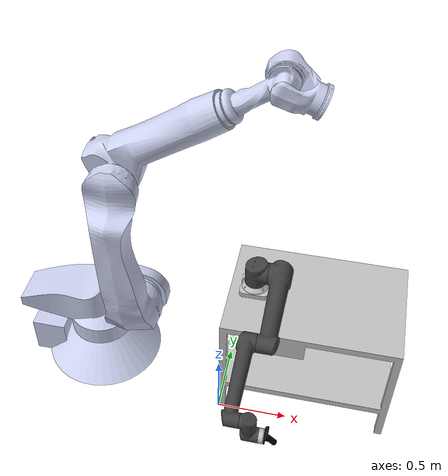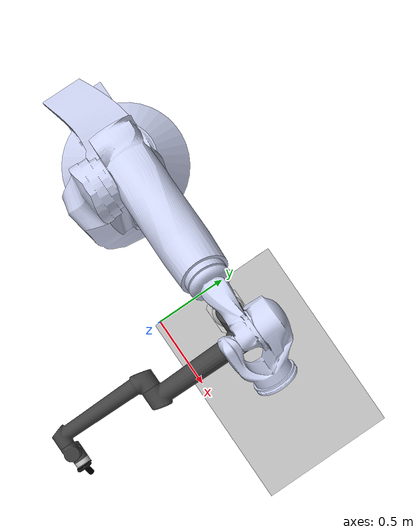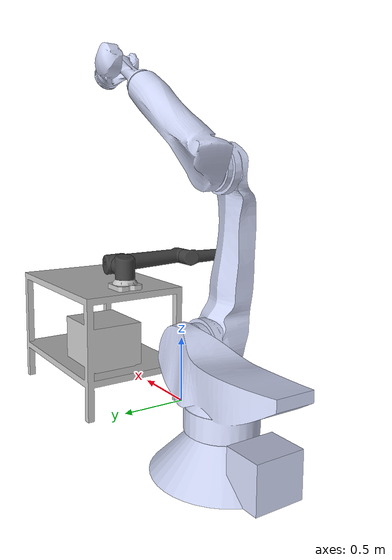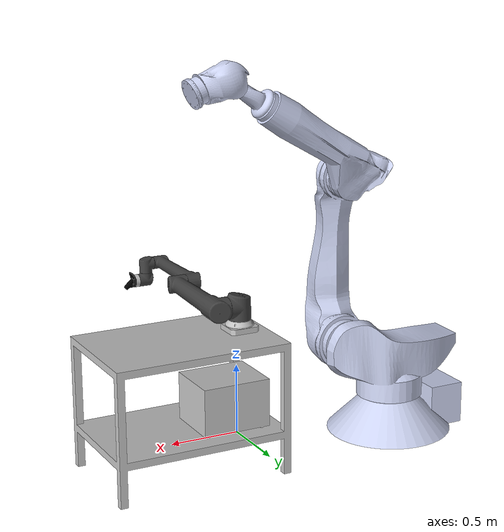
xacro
<?xml version="1.0"?>
<robot xmlns:xacro="http://ros.org/wiki/xacro" name="dual_robots">

  <!-- Define the world link -->
    <link name="world" />

  <!-- First robot -->
  <xacro:include filename="$(find bdr11_description)/urdf/ur10_robot.xacro" />
  <xacro:ur10_robot />

  <joint name="ur10_robot_joint" type="fixed">
    <parent link="world" />
    <child link="${ur10_ns}table_link" /> <!-- ${ur10_ns} -->
    <origin xyz="0 0 0" rpy="0 0 0" />
  </joint>

  <!-- Second robot -->
  <xacro:include filename="$(find bdr11_description)/urdf/quantec_eff.urdf.xacro" />
  <xacro:moveit_quantec />

  <joint name="quantec_robot_joint" type="fixed">
    <parent link="world" />
    <child link="${quantec_ns}base_link_quantec" />  <!-- ${quantec_ns} -->
    <origin xyz="-1 0.4 0" rpy="-1.57 0 0" /> <!-- Adjust xyz for the desired position -->
  </joint>

</robot>

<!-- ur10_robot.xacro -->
<!-- ur10_description_v3.urdf -->

<robot name="ur10_description_v3" xmlns:xacro="http://ros.org/wiki/xacro">

    <xacro:property name="deg_to_rad" value="0.017453292519943295" />
    <xacro:include filename="$(find ur10_description_v3)/urdf/ft_sensor.gazebo.xacro"/>
    <xacro:include filename="$(find ur10_description_v3)/urdf/kinetic_rgbd.urdf.xacro"/>
    <xacro:include filename="$(find ur10_description_v3)/urdf/kinetic_rgbd.gazebo.xacro"/>

    <xacro:property name="ur10_ns" value="" />

    <xacro:macro name="ur10_robot" params="">

        <link name="${ur10_ns}table_link">
            <inertial>
                <origin xyz="0.503679778923471 0.436750246454337 0.533162239913515" rpy="0 0 0" />
                <mass value="164.427518164029" />
                <inertia ixx="17.5438109681455" ixy="1.00173029919582" ixz="-0.84554880731535" iyy="27.9962527469498" iyz="0.32261270489944" izz="25.3196927520228" />
            </inertial>
            <visual>
                <origin xyz="0 0 0" rpy="0 0 0" />
                <geometry>
                    <mesh filename="package://ur10_description_v3/meshes/table_link.STL" />
                </geometry>
                <material name="">
                    <color rgba="0.752941176470588 0.752941176470588 0.752941176470588 1" />
                </material>
            </visual>
            <collision>
                <origin xyz="0 0 0" rpy="0 0 0" />
                <geometry>
                    <mesh filename="package://ur10_description_v3/meshes/table_link.STL" />
                </geometry>
            </collision>
        </link>
        <link name="${ur10_ns}adapter_link">
            <inertial>
                <origin xyz="0.00148762870939384 -5.55111512312578E-17 0.0184969952138566" rpy="0 0 0" />
                <mass value="1.3940393775037" />
                <inertia ixx="0.00480218257555222" ixy="-3.32761202584861E-19" ixz="-6.23136456619299E-09" iyy="0.00460995913579551" iyz="-9.9318015210222E-20" izz="0.00909416459764461" />
            </inertial>
            <visual>
                <origin xyz="0 0 0" rpy="0 0 0" />
                <geometry>
                    <mesh filename="package://ur10_description_v3/meshes/adapter_link.STL" />
                </geometry>
                <material name="">
                    <color rgba="0.752941176470588 0.752941176470588 0.752941176470588 1" />
                </material>
            </visual>
            <collision>
                <origin xyz="0 0 0" rpy="0 0 0" />
                <geometry>
                    <mesh filename="package://ur10_description_v3/meshes/adapter_link.STL" />
                </geometry>
            </collision>
        </link>
        <joint name="${ur10_ns}adapter_joint" type="fixed">
            <origin xyz="0.17 0.4 0.9" rpy="0 0 0" />
            <parent link="${ur10_ns}table_link" />
            <child link="${ur10_ns}adapter_link" />
            <axis xyz="0 0 0" />
        </joint>
        <link name="${ur10_ns}base_link">
            <inertial>
                <origin xyz="0.0011845 -2.7253E-08 0.017325" rpy="0 0 0" />
                <mass value="0.86268" />
                <inertia ixx="0.0017501" ixy="8.3495E-09" ixz="9.0593E-06" iyy="0.0016637" iyz="-4.5806E-10" izz="0.0032119" />
            </inertial>
            <visual>
                <origin xyz="0 0 0" rpy="0 0 0" />
                <geometry>
                    <mesh filename="package://ur10_description_v3/meshes/base_link.STL" />
                </geometry>
                <material name="">
                    <color rgba="0.75294 0.75294 0.75294 1" />
                </material>
            </visual>
            <collision>
                <origin xyz="0 0 0" rpy="0 0 0" />
                <geometry>
                    <mesh filename="package://ur10_description_v3/meshes/base_link.STL" />
                </geometry>
            </collision>
        </link>
        <joint name="${ur10_ns}base_joint" type="fixed">
            <origin xyz="0 0 0.037" rpy="0 0 0" />
            <parent link="${ur10_ns}adapter_link" />
            <child link="${ur10_ns}base_link" />
            <axis xyz="0 0 0" />
        </joint>
        <link name="${ur10_ns}shoulder_link">
            <inertial>
                <origin xyz="2.679E-07 0.010024 0.0831" rpy="0 0 0" />
                <mass value="7.778" />
                <inertia ixx="0.012906" ixy="1.6076E-08" ixz="-3.7079E-08" iyy="0.012039" iyz="-0.00053627" izz="0.010755" />
            </inertial>
            <visual>
                <origin xyz="0 0 0" rpy="0 0 0" />
                <geometry>
                    <mesh filename="package://ur10_description_v3/meshes/shoulder_link.STL" />
                </geometry>
                <material name="">
                    <color rgba="0.25098 0.25098 0.25098 1" />
                </material>
            </visual>
            <collision>
                <origin xyz="0 0 0" rpy="0 0 0" />
                <geometry>
                    <mesh filename="package://ur10_description_v3/meshes/shoulder_link.STL" />
                </geometry>
            </collision>
        </link>
        <joint name="${ur10_ns}shoulder_pan_joint" type="revolute">
            <origin xyz="0 0 0.038" rpy="0 0 -1.57" />
            <parent link="${ur10_ns}base_link" />
            <child link="${ur10_ns}shoulder_link" />
            <axis xyz="0 0 1" />
            <limit lower="-6.28" upper="6.28" effort="330" velocity="120" />
        </joint>
        <link name="${ur10_ns}upper_arm_link">
            <inertial>
                <origin xyz="-0.25443 -2.027E-07 0.082537" rpy="0 0 0" />
                <mass value="12.93" />
                <inertia ixx="0.024456" ixy="3.1971E-08" ixz="0.0078193" iyy="0.52575" iyz="8.3512E-08" izz="0.52417" />
            </inertial>
            <visual>
                <origin xyz="0 0 0" rpy="0 0 0" />
                <geometry>
                    <mesh filename="package://ur10_description_v3/meshes/upper_arm_link.STL" />
                </geometry>
                <material name="">
                    <color rgba="0.25098 0.25098 0.25098 1" />
                </material>
            </visual>
            <collision>
                <origin xyz="0 0 0" rpy="0 0 0" />
                <geometry>
                    <mesh filename="package://ur10_description_v3/meshes/upper_arm_link.STL" />
                </geometry>
            </collision>
        </link>
        <joint name="${ur10_ns}shoulder_lift_joint" type="revolute">
            <origin xyz="0 0.0859989999999999 0.0882571802206784" rpy="1.5707963267949 0.0240929901040578 3.14159265358979" />
            <parent link="${ur10_ns}shoulder_link" />
            <child link="${ur10_ns}upper_arm_link" />
            <axis xyz="0 0 1" />
            <limit lower="-6.28" upper="6.28" effort="330" velocity="120" />
        </joint>
        <link name="${ur10_ns}forearm_link">
            <inertial>
                <origin xyz="-0.24807 1.9251E-09 -0.034936" rpy="0 0 0" />
                <mass value="3.87" />
                <inertia ixx="0.0067905" ixy="5.4328E-08" ixz="-0.00025402" iyy="0.20899" iyz="7.4389E-09" izz="0.20875" />
            </inertial>
            <visual>
                <origin xyz="0 0 0" rpy="0 0 0" />
                <geometry>
                    <mesh filename="package://ur10_description_v3/meshes/forearm_link.STL" />
                </geometry>
                <material name="">
                    <color rgba="0.25098 0.25098 0.25098 1" />
                </material>
            </visual>
            <collision>
                <origin xyz="0 0 0" rpy="0 0 0" />
                <geometry>
                    <mesh filename="package://ur10_description_v3/meshes/forearm_link.STL" />
                </geometry>
            </collision>
        </link>
        <joint name="${ur10_ns}elbow_joint" type="revolute">
            <origin xyz="-0.612 0 0" rpy="0 0 0.0242666741712824" />
            <parent link="${ur10_ns}upper_arm_link" />
            <child link="${ur10_ns}forearm_link" />
            <axis xyz="0 0 1" />
            <limit lower="-3.14" upper="3.14" effort="150" velocity="180" />
        </joint>
        <link name="${ur10_ns}wrist_1_link">
            <inertial>
                <origin xyz="8.3814E-09 -0.010045 0.046994" rpy="0 0 0" />
                <mass value="1.96" />
                <inertia ixx="0.0010747" ixy="-1.3405E-12" ixz="4.6386E-10" iyy="0.00088168" iyz="7.862E-05" izz="0.00098347" />
            </inertial>
            <visual>
                <origin xyz="0 0 0" rpy="0 0 0" />
                <geometry>
                    <mesh filename="package://ur10_description_v3/meshes/wrist_1_link.STL" />
                </geometry>
                <material name="">
                    <color rgba="0.25098 0.25098 0.25098 1" />
                </material>
            </visual>
            <collision>
                <origin xyz="0 0 0" rpy="0 0 0" />
                <geometry>
                    <mesh filename="package://ur10_description_v3/meshes/wrist_1_link.STL" />
                </geometry>
            </collision>
        </link>
        <joint name="${ur10_ns}wrist_1_joint" type="revolute">
            <origin xyz="-0.5716 0 0.0220010000000001" rpy="0 0 -0.000173684067224549" />
            <parent link="${ur10_ns}forearm_link" />
            <child link="${ur10_ns}wrist_1_link" />
            <axis xyz="0 0 1" />
            <limit lower="-6.28" upper="6.28" effort="56" velocity="180" />
        </joint>
        <link name="${ur10_ns}wrist_2_link">
            <inertial>
                <origin xyz="-8.3814E-09 0.010045 0.046994" rpy="0 0 0" />
                <mass value="1.96" />
                <inertia ixx="0.0010747" ixy="-1.3405E-12" ixz="-4.6386E-10" iyy="0.00088168" iyz="-7.862E-05" izz="0.00098347" />
            </inertial>
            <visual>
                <origin xyz="0 0 0" rpy="0 0 0" />
                <geometry>
                    <mesh filename="package://ur10_description_v3/meshes/wrist_2_link.STL" />
                </geometry>
                <material name="">
                    <color rgba="0.25098 0.25098 0.25098 1" />
                </material>
            </visual>
            <collision>
                <origin xyz="0 0 0" rpy="0 0 0" />
                <geometry>
                    <mesh filename="package://ur10_description_v3/meshes/wrist_2_link.STL" />
                </geometry>
            </collision>
        </link>
        <joint name="${ur10_ns}wrist_2_joint" type="revolute">
            <origin xyz="0 -0.0617000000000001 0.054" rpy="1.5707963267949 0 0" />
            <parent link="${ur10_ns}wrist_1_link" />
            <child link="${ur10_ns}wrist_2_link" />
            <axis xyz="0 0 1" />
            <limit lower="-6.28" upper="6.28" effort="56" velocity="180" />
        </joint>
        <link name="${ur10_ns}wrist_3_link">
            <inertial>
                <origin xyz="2.2204E-16 -1.1102E-16 0.015005" rpy="0 0 0" />
                <mass value="0.202" />
                <inertia ixx="0.00010845" ixy="-6.3527E-22" ixz="8.5217E-21" iyy="0.00010845" iyz="2.1272E-20" izz="0.0001885" />
            </inertial>
            <visual>
                <origin xyz="0 0 0" rpy="0 0 0" />
                <geometry>
                    <mesh filename="package://ur10_description_v3/meshes/wrist_3_link.STL" />
                </geometry>
                <material name="">
                    <color rgba="0.75294 0.75294 0.75294 1" />
                </material>
            </visual>
            <collision>
                <origin xyz="0 0 0" rpy="0 0 0" />
                <geometry>
                    <mesh filename="package://ur10_description_v3/meshes/wrist_3_link.STL" />
                </geometry>
            </collision>
        </link>
        <joint name="${ur10_ns}wrist_3_joint" type="revolute">
            <origin xyz="0 0.0617 0.054" rpy="-1.5707963267949 0.0141025375343068 0" />
            <parent link="${ur10_ns}wrist_2_link" />
            <child link="${ur10_ns}wrist_3_link" />
            <axis xyz="0 0 1" />
            <limit lower="-6.28" upper="6.28" effort="56" velocity="180" />
        </joint>
        <link name="${ur10_ns}tool0_link">
            <inertial>
                <origin xyz="-9.51811385263568E-09 -0.00040829549117638 -0.063076624107084" rpy="0 0 0" />
                <mass value="0.159494248297753" />
                <inertia ixx="0.000196142213229152" ixy="-3.17147593634008E-12" ixz="-8.16590451397829E-11" iyy="0.000202558472496363" iyz="3.31143649078889E-05" izz="0.000103928487892553" />
            </inertial>
            <visual>
                <origin xyz="0 0 0" rpy="0 0 0" />
                <geometry>
                    <mesh filename="package://ur10_description_v3/meshes/test_finger_link.STL" />
                </geometry>
                <material name="">
                    <color rgba="0 0 0 1" />
                </material>
            </visual>
            <collision>
                <origin xyz="0 0 0" rpy="0 0 0" />
                <geometry>
                    <mesh filename="package://ur10_description_v3/meshes/test_finger_link.STL" />
                </geometry>
            </collision>
        </link>
        <joint name="${ur10_ns}tool0" type="fixed">
            <origin xyz="0 -0.0486072989450782 0.0984743807368732" rpy="0.785398163397435 0 0" />
            <parent link="${ur10_ns}wrist_3_link" />
            <child link="${ur10_ns}tool0_link" />
            <axis xyz="0 0 0" />
        </joint>
        <link name="${ur10_ns}camera_link">
            <inertial>
                <origin xyz="-1.61524861117535E-05 -0.00212700504491092 -0.0193765848255853" rpy="0 0 0" />
                <mass value="0.0840231018507497" />
                <inertia ixx="8.83086020963579E-06" ixy="4.69402693871799E-10" ixz="-1.85931238714756E-08" iyy="0.00010709697994186" iyz="1.0714392504519E-06" izz="0.000107821135197006" />
            </inertial>
            <collision>
                <origin xyz="0 0 0" rpy="0 0 0" />
                <geometry>
                    <mesh filename="package://ur10_description_v3/meshes/camera_link.STL" />
                </geometry>
            </collision>
        </link>
        <joint name="${ur10_ns}tool_camera" type="fixed">
            <origin xyz="0 0.0158483827537649 0.0919267022436815" rpy="0.856180071631976 0 0" />
            <parent link="${ur10_ns}wrist_3_link" />
            <child link="${ur10_ns}camera_link" />
            <axis xyz="0 0 0" />
        </joint>

        <!-- force/torque sensor -->
        <xacro:ft_sensor_gazebo joint="${ur10_ns}wrist_3_joint"/>

        <!-- camera -->
        <xacro:kinetic_rgb name="rgbd_camera" parent="${ur10_ns}camera">
            <origin xyz="0 0 0.005" rpy="0 0 3.14"/>
            <origin xyz="0 0 0" rpy="0 0 0"/>
        </xacro:kinetic_rgb>

        <!-- ROS-Industrial 'base' frame: base_link to UR 'Base' Coordinates transform -->
        <link name="${ur10_ns}base"/>
        <joint name="${ur10_ns}base_link-base_fixed_joint" type="fixed">
        <origin xyz="0 0 0" rpy="0 0 3.14"/>
        <parent link="${ur10_ns}base_link"/>
        <child link="${ur10_ns}base"/>
        </joint>
    </xacro:macro>

    <!-- call -->

</robot>

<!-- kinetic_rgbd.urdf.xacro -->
<robot xmlns:xacro="http://ros.org/wiki/xacro">

    <!-- Define the conversion constant -->
    <xacro:property name="deg_to_rad" value="0.017453292519943295" />
    <xacro:include filename="$(find ur10_description_v3)/urdf/kinetic_rgbd.gazebo.xacro"/>

    <xacro:macro name="dummy_inertial">
        <inertial>
            <origin xyz="0 0 0" rpy="0 0 0"/>
            <mass value="0.001"/>
            <inertia ixx="0.00001" ixy="0" ixz="0"
                    iyy="0.00001" iyz="0"
                    izz="0.00001"/>
        </inertial>
    </xacro:macro>

    <xacro:macro name="kinetic_rgb" params="name parent *origin *optical_origin">

        <!-- frames in the center of the camera -->
        <joint name="${name}_joint" type="fixed">
            <xacro:insert_block name="origin"/>
            <parent link="${parent}_link"/>
            <child link="${name}_link"/>
        </joint>

        <link name="${name}_link">
            <inertial>
                <origin xyz="-0.00936000000 -0.00003000000 -0.00273000000" rpy="0 0 0"/>
                <mass value="0.21970000000"/>
                <inertia ixx="0.00000429247" ixy="0.00000000000" ixz="0.00000002565"
                        iyy="0.00000008027" iyz="0.00000000000"
                        izz="0.00000427339"/>
            </inertial>

        </link>

        <joint name="${name}_optical_joint" type="fixed">
            <xacro:insert_block name="optical_origin"/>
            <parent link="${name}_link"/>
            <child link="${name}_optical_frame"/>
        </joint>

        <link name="${name}_optical_frame">
            <xacro:dummy_inertial/>
        </link>

        <!-- Depth sensor frames -->
        <joint name="${name}_depth_joint" type="fixed">
            <origin xyz="-0.025 0.0 0.0" rpy="1.57 -1.57 0"/>   <!--origin xyz="0.0 0.049 0.0" rpy="0 0 0"-->
            <parent link="${name}_link"/>
            <child link="${name}_depth_frame"/>
        </joint>

        <link name="${name}_depth_frame">
            <xacro:dummy_inertial/>
        </link>

        <joint name="${name}_depth_optical_joint" type="fixed">
            <origin xyz="0 0 0" rpy="${-90 * deg_to_rad} 0.0 ${-90 * deg_to_rad}"/>  <!-- -90 deg_to_rad - x&z -->
            <parent link="${name}_depth_frame"/>
            <child link="${name}_depth_optical_frame"/>
        </joint>

        <link name="${name}_depth_optical_frame">
            <xacro:dummy_inertial/>
        </link>

        <!-- RGB sensor frames -->
        <joint name="${name}_rgb_joint" type="fixed">
            <origin xyz="0 0 0" rpy="1.57 -1.57 0"/>
            <parent link="${name}_link"/>
            <child link="${name}_rgb_frame"/>
        </joint>

        <link name="${name}_rgb_frame">
            <xacro:dummy_inertial/>
        </link>

        <joint name="${name}_rgb_optical_joint" type="fixed">
            <origin xyz="0 0 0" rpy="${-90 * deg_to_rad} 0.0 ${-90 * deg_to_rad}"/> <!-- -90 deg_to_rad - x&z -->
            <parent link="${name}_rgb_frame"/>
            <child link="${name}_rgb_optical_frame"/>
        </joint>

        <link name="${name}_rgb_optical_frame">
            <xacro:dummy_inertial/>
        </link>
    </xacro:macro>

    <!-- Add feedback for camera-related joints -->
    <gazebo reference="rgbd_camera_joint">
      <provideFeedback>true</provideFeedback>
    </gazebo>

    <gazebo reference="rgbd_camera_optical_joint">
      <provideFeedback>true</provideFeedback>
    </gazebo>

    <gazebo reference="rgbd_camera_depth_joint">
      <provideFeedback>true</provideFeedback>
    </gazebo>

    <gazebo reference="rgbd_camera_depth_optical_joint">
      <provideFeedback>true</provideFeedback>
    </gazebo>

    <gazebo reference="rgbd_camera_rgb_joint">
      <provideFeedback>true</provideFeedback>
    </gazebo>

    <gazebo reference="rgbd_camera_rgb_optical_joint">
      <provideFeedback>true</provideFeedback>
    </gazebo>

    <!-- Pass the 'name' parameter when calling the gazebo macro -->
    <xacro:kinetic_rgbd_camera_gazebo name="rgbd_camera"/>
</robot>

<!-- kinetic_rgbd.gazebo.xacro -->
<robot xmlns:xacro="http://ros.org/wiki/xacro">
  <!-- Define the conversion constant -->
  <xacro:property name="deg_to_rad" value="0.017453292519943295" />

  <xacro:macro name="kinetic_rgbd_camera_gazebo" params="name">
    <gazebo reference="${name}_link">
      <!-- Depth (IR) -->
      <sensor type="depth" name="${name}_frame_sensor">
        <always_on>true</always_on>
        <update_rate>6.0</update_rate>

        <camera>
          <horizontal_fov>${58.0 * deg_to_rad}</horizontal_fov>
          <image>
            <format>R8G8B8</format>
            <width>800</width>
            <height>600</height>
          </image>
          <clip>
            <near>0.05</near>
            <far>1.5</far>
          </clip>
        </camera>

        <plugin name="${name}_frame_controller" filename="libgazebo_ros_openni_kinect.so">
          <alwaysOn>true</alwaysOn>
          <updateRate>6.0</updateRate>
          <cameraName>${name}</cameraName>
          <imageTopicName>ir/image_raw</imageTopicName>
          <cameraInfoTopicName>ir/camera_info</cameraInfoTopicName>
          <depthImageTopicName>depth/image_raw</depthImageTopicName>
          <depthImageCameraInfoTopicName>depth/camera_info</depthImageCameraInfoTopicName>
          <pointCloudTopicName>depth/points</pointCloudTopicName>
          <frameName>${name}_optical_frame</frameName>
          <pointCloudCutoff>0.05</pointCloudCutoff>
          <pointCloudCutoffMax>5</pointCloudCutoffMax>

          <rangeMax>1.5</rangeMax>
        </plugin>
      </sensor>

      <!-- RGB -->

      <sensor type="depth" name="${name}_frame_sensor">
        <always_on>true</always_on>
        <update_rate>6.0</update_rate>

        <camera>
          <horizontal_fov>${58.0 * deg_to_rad}</horizontal_fov>
          <image>
            <format>R8G8B8</format>
            <width>800</width>
            <height>600</height>
          </image>
          <clip>
            <near>0.05</near>
            <far>1.5</far>
          </clip>
        </camera>

        <plugin name="${name}_frame_controller" filename="libgazebo_ros_openni_kinect.so">
          <alwaysOn>true</alwaysOn>
          <updateRate>6.0</updateRate>
          <cameraName>${name}</cameraName>
          <imageTopicName>rgb/image_raw</imageTopicName>
          <cameraInfoTopicName>rgb/camera_info</cameraInfoTopicName>
          <pointCloudTopicName>rgb/points</pointCloudTopicName>
          <depthImageTopicName>depth/image_raw</depthImageTopicName>
          <depthImageCameraInfoTopicName>depth/camera_info</depthImageCameraInfoTopicName>
          <frameName>${name}_optical_frame</frameName>
          <pointCloudCutoff>0.05</pointCloudCutoff>
          <pointCloudCutoffMax>5</pointCloudCutoffMax>
          <rangeMax>1.5</rangeMax>
        </plugin>
      </sensor>

      <!-- Add feedback for camera link -->
      <provideFeedback>true</provideFeedback>

    </gazebo>
  </xacro:macro>
</robot>

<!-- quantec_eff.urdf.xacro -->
<!-- |    This document was autogenerated by xacro from /home/robat/goldilocks_sensibility_ws/src/moveit_quantec/urdf/moveit_quantec.urdf.xacro | -->
<!-- |    EDITING THIS FILE BY HAND IS NOT RECOMMENDED                                 | -->
<robot name="moveit_quantec" xmlns:xacro="http://ros.org/wiki/xacro">

    <xacro:property name="quantec_ns" value="" />

    <xacro:macro name="moveit_quantec" params="">
        <link name="${quantec_ns}base_link_quantec">
            <inertial>
                <origin rpy="0 0 0" xyz="-0.0810107614623872 1.69806255825153E-07 0.10599645436339" />
                <mass value="97.9298238151877" />
                <inertia ixx="3.12727259199142" ixy="2.14569120944394E-06" ixz="0.467210023955441" iyy="5.52628001885015" iyz="-1.97817775090254E-06" izz="7.58545932293491" />
            </inertial>
            <visual>
                <origin rpy="0 0 0" xyz="0 0 0" />
                <geometry>
                    <mesh filename="package://moveit_quantec/meshes/base_link.STL" />
                </geometry>
                <material name="">
                    <color rgba="0.792156862745098 0.819607843137255 0.933333333333333 1" />
                </material>
            </visual>
            <collision>
                <origin rpy="0 0 0" xyz="0 0 0" />
                <geometry>
                    <mesh filename="package://moveit_quantec/meshes/base_link.STL" />
                </geometry>
            </collision>
        </link>
        <link name="${quantec_ns}link_1">
            <inertial>
                <origin rpy="0 0 0" xyz="-0.0084665 0.019734 0.25939" />
                <mass value="94.945" />
                <inertia ixx="2.6472" ixy="-0.62895" ixz="-0.35979" iyy="6.3022" iyz="-0.17581" izz="5.5156" />
            </inertial>
            <visual>
                <origin rpy="0 0 0" xyz="0 0 0" />
                <geometry>
                    <mesh filename="package://moveit_quantec/meshes/link_1.STL" />
                </geometry>
                <material name="">
                    <color rgba="0.79216 0.81961 0.93333 1" />
                </material>
            </visual>
            <collision>
                <origin rpy="0 0 0" xyz="0 0 0" />
                <geometry>
                    <mesh filename="package://moveit_quantec/meshes/link_1.STL" />
                </geometry>
            </collision>
        </link>
        <joint name="${quantec_ns}joint_1" type="continuous">
            <origin rpy="1.5708 0.014047 0" xyz="0 -0.235 0" />
            <parent link="${quantec_ns}base_link_quantec" />
            <child link="${quantec_ns}link_1" />
            <axis xyz="0 0 1" />
        </joint>
        <link name="${quantec_ns}link_2">
            <inertial>
                <origin rpy="0 0 0" xyz="0.0015545 -0.23159 0.40897" />
                <mass value="82.176" />
                <inertia ixx="12.398" ixy="-9.2862E-05" ixz="0.082654" iyy="12.541" iyz="0.043185" izz="0.91874" />
            </inertial>
            <visual>
                <origin rpy="0 0 0" xyz="0 0 0" />
                <geometry>
                    <mesh filename="package://moveit_quantec/meshes/link_2.STL" />
                </geometry>
                <material name="">
                    <color rgba="0.79216 0.81961 0.93333 1" />
                </material>
            </visual>
            <collision>
                <origin rpy="0 0 0" xyz="0 0 0" />
                <geometry>
                    <mesh filename="package://moveit_quantec/meshes/link_2.STL" />
                </geometry>
            </collision>
        </link>
        <joint name="${quantec_ns}joint_2" type="continuous">
            <origin rpy="0 -0.0391 0" xyz="0.33 0 0.41772" />
            <parent link="${quantec_ns}link_1" />
            <child link="${quantec_ns}link_2" />
            <axis xyz="0 1 0" />
        </joint>
        <link name="${quantec_ns}link_3">
            <inertial>
                <origin rpy="0 0 0" xyz="0.35711 -0.015416 0.10193" />
                <mass value="47.124" />
                <inertia ixx="0.41866" ixy="-0.086691" ixz="-0.15996" iyy="3.9994" iyz="-0.042155" izz="3.9284" />
            </inertial>
            <visual>
                <origin rpy="0 0 0" xyz="0 0 0" />
                <geometry>
                    <mesh filename="package://moveit_quantec/meshes/link_3.STL" />
                </geometry>
                <material name="">
                    <color rgba="0.79216 0.81961 0.93333 1" />
                </material>
            </visual>
            <collision>
                <origin rpy="0 0 0" xyz="0 0 0" />
                <geometry>
                    <mesh filename="package://moveit_quantec/meshes/link_3.STL" />
                </geometry>
            </collision>
        </link>
        <joint name="${quantec_ns}joint_3" type="continuous">
            <origin rpy="0 -0.52738 0" xyz="0 0 1.15" />
            <parent link="${quantec_ns}link_2" />
            <child link="${quantec_ns}link_3" />
            <axis xyz="0 1 0" />
        </joint>
        <link name="${quantec_ns}link_4">
            <inertial>
                <origin rpy="0 0 0" xyz="0.27937 0.0063685 -0.00017456" />
                <mass value="4.6744" />
                <inertia ixx="0.011503" ixy="-0.0037737" ixz="7.4652E-05" iyy="0.085293" iyz="-0.00012925" izz="0.085285" />
            </inertial>
            <visual>
                <origin rpy="0 0 0" xyz="0 0 0" />
                <geometry>
                    <mesh filename="package://moveit_quantec/meshes/link_4.STL" />
                </geometry>
                <material name="">
                    <color rgba="0.79216 0.81961 0.93333 1" />
                </material>
            </visual>
            <collision>
                <origin rpy="0 0 0" xyz="0 0 0" />
                <geometry>
                    <mesh filename="package://moveit_quantec/meshes/link_4.STL" />
                </geometry>
            </collision>
        </link>
        <joint name="${quantec_ns}joint_4" type="continuous">
            <origin rpy="0.037095 0 0" xyz="0.78147 -0.0086752 0.115" />
            <parent link="${quantec_ns}link_3" />
            <child link="${quantec_ns}link_4" />
            <axis xyz="1 0 0" />
        </joint>
        <link name="${quantec_ns}link_5">
            <inertial>
                <origin rpy="0 0 0" xyz="0.046286 0.05529 7.0521E-05" />
                <mass value="8.3467" />
                <inertia ixx="0.035209" ixy="0.0040294" ixz="-2.9627E-05" iyy="0.059372" iyz="-0.00013764" izz="0.046632" />
            </inertial>
            <visual>
                <origin rpy="0 0 0" xyz="0 0 0" />
                <geometry>
                    <mesh filename="package://moveit_quantec/meshes/link_5.STL" />
                </geometry>
                <material name="">
                    <color rgba="0.79216 0.81961 0.93333 1" />
                </material>
            </visual>
            <collision>
                <origin rpy="0 0 0" xyz="0 0 0" />
                <geometry>
                    <mesh filename="package://moveit_quantec/meshes/link_5.STL" />
                </geometry>
            </collision>
        </link>
        <joint name="${quantec_ns}joint_5" type="continuous">
            <origin rpy="0 0.9269 0" xyz="0.44853 0 0" />
            <parent link="${quantec_ns}link_4" />
            <child link="${quantec_ns}link_5" />
            <axis xyz="0 1 0" />
        </joint>
        <link name="${quantec_ns}link_6">
            <inertial>
                <origin rpy="0 0 0" xyz="0.021186 9.6657E-07 -3.3846E-07" />
                <mass value="0.97276" />
                <inertia ixx="0.0044336" ixy="-1.5389E-09" ixz="6.5721E-10" iyy="0.0023152" iyz="-1.9424E-09" izz="0.0023149" />
            </inertial>
            <visual>
                <origin rpy="0 0 0" xyz="0 0 0" />
                <geometry>
                    <mesh filename="package://moveit_quantec/meshes/link_6.STL" />
                </geometry>
                <material name="">
                    <color rgba="0.79216 0.81961 0.93333 1" />
                </material>
            </visual>
            <collision>
                <origin rpy="0 0 0" xyz="0 0 0" />
                <geometry>
                    <mesh filename="package://moveit_quantec/meshes/link_6.STL" />
                </geometry>
            </collision>
        </link>
        <joint name="${quantec_ns}joint_6" type="continuous">
            <origin rpy="-2.218 0 0" xyz="0.20228 1.3733E-05 0" />
            <parent link="${quantec_ns}link_5" />
            <child link="${quantec_ns}link_6" />
            <axis xyz="1 0 0" />
        </joint>
    </xacro:macro>

    <!-- call -->

</robot>
